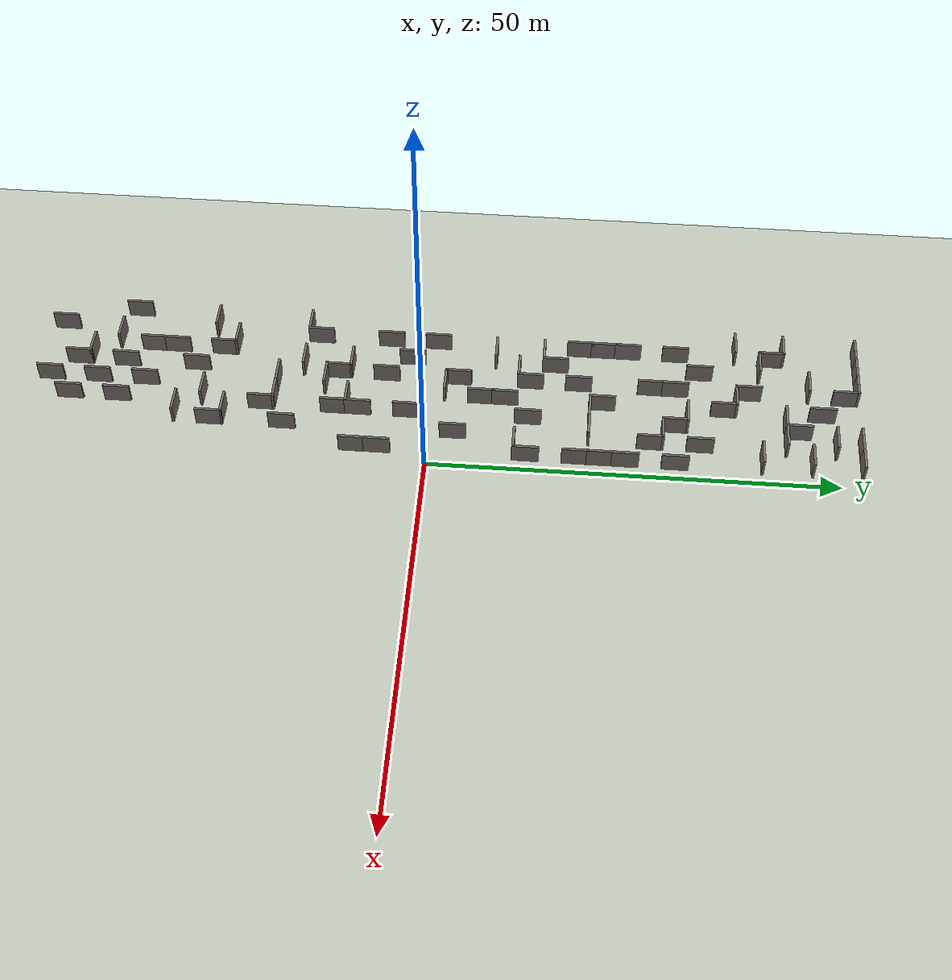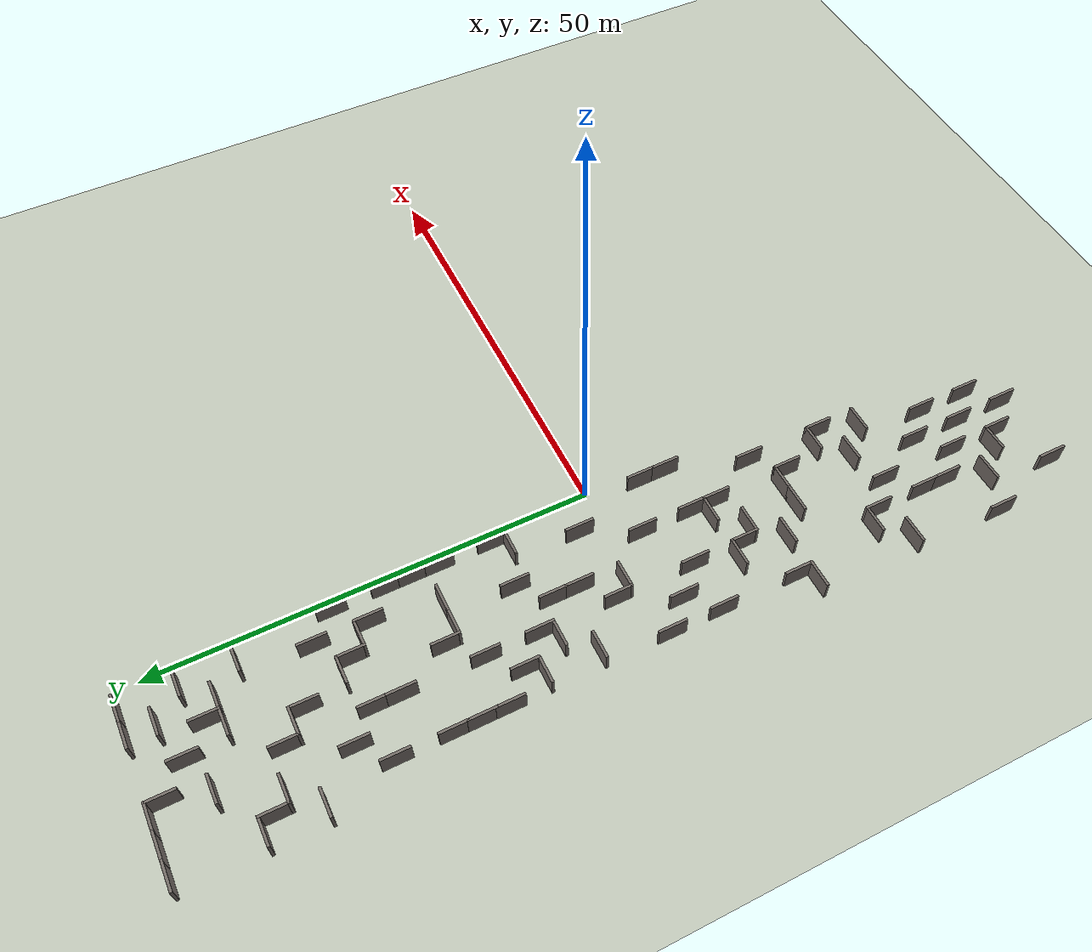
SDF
<sdf version="1.9">
 <world name="swap_world">
  <model name="ground_plane">
   <static>true</static>
   <link name="link">
    <collision name="collision">
     <geometry><plane><normal>0 0 1</normal><size>125 125</size></plane></geometry>
    </collision>
    <visual name="visual">
     <geometry><plane><normal>0 0 1</normal><size>125 125</size></plane></geometry>
     <material><ambient>0.75 0.78 0.72 1</ambient><diffuse>0.75 0.78 0.72 1</diffuse></material>
    </visual>
   </link>
  </model>
  <model name="wall_177">
   <static>true</static>
   <link name="l">
    <pose>-22.50 -39.00 1.25 0 0 1.5708</pose>
    <collision name="c"><geometry><box><size>3.30 0.3 2.5</size></box></geometry></collision>
    <visual name="v">
     <geometry><box><size>3.30 0.3 2.5</size></box></geometry>
     <material><ambient>0.45 0.42 0.4 1</ambient><diffuse>0.45 0.42 0.4 1</diffuse></material>
    </visual>
   </link>
  </model>
  <model name="wall_178">
   <static>true</static>
   <link name="l">
    <pose>-21.00 52.50 1.25 0 0 0.0000</pose>
    <collision name="c"><geometry><box><size>3.30 0.3 2.5</size></box></geometry></collision>
    <visual name="v">
     <geometry><box><size>3.30 0.3 2.5</size></box></geometry>
     <material><ambient>0.45 0.42 0.4 1</ambient><diffuse>0.45 0.42 0.4 1</diffuse></material>
    </visual>
   </link>
  </model>
  <model name="wall_179">
   <static>true</static>
   <link name="l">
    <pose>-19.50 42.00 1.25 0 0 1.5708</pose>
    <collision name="c"><geometry><box><size>3.30 0.3 2.5</size></box></geometry></collision>
    <visual name="v">
     <geometry><box><size>3.30 0.3 2.5</size></box></geometry>
     <material><ambient>0.45 0.42 0.4 1</ambient><diffuse>0.45 0.42 0.4 1</diffuse></material>
    </visual>
   </link>
  </model>
  <model name="wall_180">
   <static>true</static>
   <link name="l">
    <pose>-21.00 43.50 1.25 0 0 0.0000</pose>
    <collision name="c"><geometry><box><size>3.30 0.3 2.5</size></box></geometry></collision>
    <visual name="v">
     <geometry><box><size>3.30 0.3 2.5</size></box></geometry>
     <material><ambient>0.45 0.42 0.4 1</ambient><diffuse>0.45 0.42 0.4 1</diffuse></material>
    </visual>
   </link>
  </model>
  <model name="wall_181">
   <static>true</static>
   <link name="l">
    <pose>-21.00 37.50 1.25 0 0 0.0000</pose>
    <collision name="c"><geometry><box><size>3.30 0.3 2.5</size></box></geometry></collision>
    <visual name="v">
     <geometry><box><size>3.30 0.3 2.5</size></box></geometry>
     <material><ambient>0.45 0.42 0.4 1</ambient><diffuse>0.45 0.42 0.4 1</diffuse></material>
    </visual>
   </link>
  </model>
  <model name="wall_182">
   <static>true</static>
   <link name="l">
    <pose>-19.50 30.00 1.25 0 0 1.5708</pose>
    <collision name="c"><geometry><box><size>3.30 0.3 2.5</size></box></geometry></collision>
    <visual name="v">
     <geometry><box><size>3.30 0.3 2.5</size></box></geometry>
     <material><ambient>0.45 0.42 0.4 1</ambient><diffuse>0.45 0.42 0.4 1</diffuse></material>
    </visual>
   </link>
  </model>
  <model name="wall_183">
   <static>true</static>
   <link name="l">
    <pose>-19.50 24.00 1.25 0 0 1.5708</pose>
    <collision name="c"><geometry><box><size>3.30 0.3 2.5</size></box></geometry></collision>
    <visual name="v">
     <geometry><box><size>3.30 0.3 2.5</size></box></geometry>
     <material><ambient>0.45 0.42 0.4 1</ambient><diffuse>0.45 0.42 0.4 1</diffuse></material>
    </visual>
   </link>
  </model>
  <model name="wall_184">
   <static>true</static>
   <link name="l">
    <pose>-19.50 21.00 1.25 0 0 1.5708</pose>
    <collision name="c"><geometry><box><size>3.30 0.3 2.5</size></box></geometry></collision>
    <visual name="v">
     <geometry><box><size>3.30 0.3 2.5</size></box></geometry>
     <material><ambient>0.45 0.42 0.4 1</ambient><diffuse>0.45 0.42 0.4 1</diffuse></material>
    </visual>
   </link>
  </model>
  <model name="wall_185">
   <static>true</static>
   <link name="l">
    <pose>-19.50 18.00 1.25 0 0 1.5708</pose>
    <collision name="c"><geometry><box><size>3.30 0.3 2.5</size></box></geometry></collision>
    <visual name="v">
     <geometry><box><size>3.30 0.3 2.5</size></box></geometry>
     <material><ambient>0.45 0.42 0.4 1</ambient><diffuse>0.45 0.42 0.4 1</diffuse></material>
    </visual>
   </link>
  </model>
  <model name="wall_186">
   <static>true</static>
   <link name="l">
    <pose>-19.50 -0.00 1.25 0 0 1.5708</pose>
    <collision name="c"><geometry><box><size>3.30 0.3 2.5</size></box></geometry></collision>
    <visual name="v">
     <geometry><box><size>3.30 0.3 2.5</size></box></geometry>
     <material><ambient>0.45 0.42 0.4 1</ambient><diffuse>0.45 0.42 0.4 1</diffuse></material>
    </visual>
   </link>
  </model>
  <model name="wall_187">
   <static>true</static>
   <link name="l">
    <pose>-19.50 -6.00 1.25 0 0 1.5708</pose>
    <collision name="c"><geometry><box><size>3.30 0.3 2.5</size></box></geometry></collision>
    <visual name="v">
     <geometry><box><size>3.30 0.3 2.5</size></box></geometry>
     <material><ambient>0.45 0.42 0.4 1</ambient><diffuse>0.45 0.42 0.4 1</diffuse></material>
    </visual>
   </link>
  </model>
  <model name="wall_188">
   <static>true</static>
   <link name="l">
    <pose>-19.50 -15.00 1.25 0 0 1.5708</pose>
    <collision name="c"><geometry><box><size>3.30 0.3 2.5</size></box></geometry></collision>
    <visual name="v">
     <geometry><box><size>3.30 0.3 2.5</size></box></geometry>
     <material><ambient>0.45 0.42 0.4 1</ambient><diffuse>0.45 0.42 0.4 1</diffuse></material>
    </visual>
   </link>
  </model>
  <model name="wall_189">
   <static>true</static>
   <link name="l">
    <pose>-21.00 -16.50 1.25 0 0 0.0000</pose>
    <collision name="c"><geometry><box><size>3.30 0.3 2.5</size></box></geometry></collision>
    <visual name="v">
     <geometry><box><size>3.30 0.3 2.5</size></box></geometry>
     <material><ambient>0.45 0.42 0.4 1</ambient><diffuse>0.45 0.42 0.4 1</diffuse></material>
    </visual>
   </link>
  </model>
  <model name="wall_190">
   <static>true</static>
   <link name="l">
    <pose>-21.00 -28.50 1.25 0 0 0.0000</pose>
    <collision name="c"><geometry><box><size>3.30 0.3 2.5</size></box></geometry></collision>
    <visual name="v">
     <geometry><box><size>3.30 0.3 2.5</size></box></geometry>
     <material><ambient>0.45 0.42 0.4 1</ambient><diffuse>0.45 0.42 0.4 1</diffuse></material>
    </visual>
   </link>
  </model>
  <model name="wall_191">
   <static>true</static>
   <link name="l">
    <pose>-19.50 -48.00 1.25 0 0 1.5708</pose>
    <collision name="c"><geometry><box><size>3.30 0.3 2.5</size></box></geometry></collision>
    <visual name="v">
     <geometry><box><size>3.30 0.3 2.5</size></box></geometry>
     <material><ambient>0.45 0.42 0.4 1</ambient><diffuse>0.45 0.42 0.4 1</diffuse></material>
    </visual>
   </link>
  </model>
  <model name="wall_192">
   <static>true</static>
   <link name="l">
    <pose>-18.00 52.50 1.25 0 0 0.0000</pose>
    <collision name="c"><geometry><box><size>3.30 0.3 2.5</size></box></geometry></collision>
    <visual name="v">
     <geometry><box><size>3.30 0.3 2.5</size></box></geometry>
     <material><ambient>0.45 0.42 0.4 1</ambient><diffuse>0.45 0.42 0.4 1</diffuse></material>
    </visual>
   </link>
  </model>
  <model name="wall_193">
   <static>true</static>
   <link name="l">
    <pose>-18.00 40.50 1.25 0 0 0.0000</pose>
    <collision name="c"><geometry><box><size>3.30 0.3 2.5</size></box></geometry></collision>
    <visual name="v">
     <geometry><box><size>3.30 0.3 2.5</size></box></geometry>
     <material><ambient>0.45 0.42 0.4 1</ambient><diffuse>0.45 0.42 0.4 1</diffuse></material>
    </visual>
   </link>
  </model>
  <model name="wall_194">
   <static>true</static>
   <link name="l">
    <pose>-16.50 33.00 1.25 0 0 1.5708</pose>
    <collision name="c"><geometry><box><size>3.30 0.3 2.5</size></box></geometry></collision>
    <visual name="v">
     <geometry><box><size>3.30 0.3 2.5</size></box></geometry>
     <material><ambient>0.45 0.42 0.4 1</ambient><diffuse>0.45 0.42 0.4 1</diffuse></material>
    </visual>
   </link>
  </model>
  <model name="wall_195">
   <static>true</static>
   <link name="l">
    <pose>-16.50 15.00 1.25 0 0 1.5708</pose>
    <collision name="c"><geometry><box><size>3.30 0.3 2.5</size></box></geometry></collision>
    <visual name="v">
     <geometry><box><size>3.30 0.3 2.5</size></box></geometry>
     <material><ambient>0.45 0.42 0.4 1</ambient><diffuse>0.45 0.42 0.4 1</diffuse></material>
    </visual>
   </link>
  </model>
  <model name="wall_196">
   <static>true</static>
   <link name="l">
    <pose>-18.00 13.50 1.25 0 0 0.0000</pose>
    <collision name="c"><geometry><box><size>3.30 0.3 2.5</size></box></geometry></collision>
    <visual name="v">
     <geometry><box><size>3.30 0.3 2.5</size></box></geometry>
     <material><ambient>0.45 0.42 0.4 1</ambient><diffuse>0.45 0.42 0.4 1</diffuse></material>
    </visual>
   </link>
  </model>
  <model name="wall_197">
   <static>true</static>
   <link name="l">
    <pose>-18.00 7.50 1.25 0 0 0.0000</pose>
    <collision name="c"><geometry><box><size>3.30 0.3 2.5</size></box></geometry></collision>
    <visual name="v">
     <geometry><box><size>3.30 0.3 2.5</size></box></geometry>
     <material><ambient>0.45 0.42 0.4 1</ambient><diffuse>0.45 0.42 0.4 1</diffuse></material>
    </visual>
   </link>
  </model>
  <model name="wall_198">
   <static>true</static>
   <link name="l">
    <pose>-16.50 -3.00 1.25 0 0 1.5708</pose>
    <collision name="c"><geometry><box><size>3.30 0.3 2.5</size></box></geometry></collision>
    <visual name="v">
     <geometry><box><size>3.30 0.3 2.5</size></box></geometry>
     <material><ambient>0.45 0.42 0.4 1</ambient><diffuse>0.45 0.42 0.4 1</diffuse></material>
    </visual>
   </link>
  </model>
  <model name="wall_199">
   <static>true</static>
   <link name="l">
    <pose>-16.50 -27.00 1.25 0 0 1.5708</pose>
    <collision name="c"><geometry><box><size>3.30 0.3 2.5</size></box></geometry></collision>
    <visual name="v">
     <geometry><box><size>3.30 0.3 2.5</size></box></geometry>
     <material><ambient>0.45 0.42 0.4 1</ambient><diffuse>0.45 0.42 0.4 1</diffuse></material>
    </visual>
   </link>
  </model>
  <model name="wall_200">
   <static>true</static>
   <link name="l">
    <pose>-18.00 -25.50 1.25 0 0 0.0000</pose>
    <collision name="c"><geometry><box><size>3.30 0.3 2.5</size></box></geometry></collision>
    <visual name="v">
     <geometry><box><size>3.30 0.3 2.5</size></box></geometry>
     <material><ambient>0.45 0.42 0.4 1</ambient><diffuse>0.45 0.42 0.4 1</diffuse></material>
    </visual>
   </link>
  </model>
  <model name="wall_201">
   <static>true</static>
   <link name="l">
    <pose>-16.50 -33.00 1.25 0 0 1.5708</pose>
    <collision name="c"><geometry><box><size>3.30 0.3 2.5</size></box></geometry></collision>
    <visual name="v">
     <geometry><box><size>3.30 0.3 2.5</size></box></geometry>
     <material><ambient>0.45 0.42 0.4 1</ambient><diffuse>0.45 0.42 0.4 1</diffuse></material>
    </visual>
   </link>
  </model>
  <model name="wall_202">
   <static>true</static>
   <link name="l">
    <pose>-16.50 -36.00 1.25 0 0 1.5708</pose>
    <collision name="c"><geometry><box><size>3.30 0.3 2.5</size></box></geometry></collision>
    <visual name="v">
     <geometry><box><size>3.30 0.3 2.5</size></box></geometry>
     <material><ambient>0.45 0.42 0.4 1</ambient><diffuse>0.45 0.42 0.4 1</diffuse></material>
    </visual>
   </link>
  </model>
  <model name="wall_203">
   <static>true</static>
   <link name="l">
    <pose>-18.00 -40.50 1.25 0 0 0.0000</pose>
    <collision name="c"><geometry><box><size>3.30 0.3 2.5</size></box></geometry></collision>
    <visual name="v">
     <geometry><box><size>3.30 0.3 2.5</size></box></geometry>
     <material><ambient>0.45 0.42 0.4 1</ambient><diffuse>0.45 0.42 0.4 1</diffuse></material>
    </visual>
   </link>
  </model>
  <model name="wall_204">
   <static>true</static>
   <link name="l">
    <pose>-13.50 51.00 1.25 0 0 1.5708</pose>
    <collision name="c"><geometry><box><size>3.30 0.3 2.5</size></box></geometry></collision>
    <visual name="v">
     <geometry><box><size>3.30 0.3 2.5</size></box></geometry>
     <material><ambient>0.45 0.42 0.4 1</ambient><diffuse>0.45 0.42 0.4 1</diffuse></material>
    </visual>
   </link>
  </model>
  <model name="wall_205">
   <static>true</static>
   <link name="l">
    <pose>-15.00 52.50 1.25 0 0 0.0000</pose>
    <collision name="c"><geometry><box><size>3.30 0.3 2.5</size></box></geometry></collision>
    <visual name="v">
     <geometry><box><size>3.30 0.3 2.5</size></box></geometry>
     <material><ambient>0.45 0.42 0.4 1</ambient><diffuse>0.45 0.42 0.4 1</diffuse></material>
    </visual>
   </link>
  </model>
  <model name="wall_206">
   <static>true</static>
   <link name="l">
    <pose>-15.00 46.50 1.25 0 0 0.0000</pose>
    <collision name="c"><geometry><box><size>3.30 0.3 2.5</size></box></geometry></collision>
    <visual name="v">
     <geometry><box><size>3.30 0.3 2.5</size></box></geometry>
     <material><ambient>0.45 0.42 0.4 1</ambient><diffuse>0.45 0.42 0.4 1</diffuse></material>
    </visual>
   </link>
  </model>
  <model name="wall_207">
   <static>true</static>
   <link name="l">
    <pose>-13.50 39.00 1.25 0 0 1.5708</pose>
    <collision name="c"><geometry><box><size>3.30 0.3 2.5</size></box></geometry></collision>
    <visual name="v">
     <geometry><box><size>3.30 0.3 2.5</size></box></geometry>
     <material><ambient>0.45 0.42 0.4 1</ambient><diffuse>0.45 0.42 0.4 1</diffuse></material>
    </visual>
   </link>
  </model>
  <model name="wall_208">
   <static>true</static>
   <link name="l">
    <pose>-13.50 30.00 1.25 0 0 1.5708</pose>
    <collision name="c"><geometry><box><size>3.30 0.3 2.5</size></box></geometry></collision>
    <visual name="v">
     <geometry><box><size>3.30 0.3 2.5</size></box></geometry>
     <material><ambient>0.45 0.42 0.4 1</ambient><diffuse>0.45 0.42 0.4 1</diffuse></material>
    </visual>
   </link>
  </model>
  <model name="wall_209">
   <static>true</static>
   <link name="l">
    <pose>-13.50 27.00 1.25 0 0 1.5708</pose>
    <collision name="c"><geometry><box><size>3.30 0.3 2.5</size></box></geometry></collision>
    <visual name="v">
     <geometry><box><size>3.30 0.3 2.5</size></box></geometry>
     <material><ambient>0.45 0.42 0.4 1</ambient><diffuse>0.45 0.42 0.4 1</diffuse></material>
    </visual>
   </link>
  </model>
  <model name="wall_210">
   <static>true</static>
   <link name="l">
    <pose>-13.50 18.00 1.25 0 0 1.5708</pose>
    <collision name="c"><geometry><box><size>3.30 0.3 2.5</size></box></geometry></collision>
    <visual name="v">
     <geometry><box><size>3.30 0.3 2.5</size></box></geometry>
     <material><ambient>0.45 0.42 0.4 1</ambient><diffuse>0.45 0.42 0.4 1</diffuse></material>
    </visual>
   </link>
  </model>
  <model name="wall_211">
   <static>true</static>
   <link name="l">
    <pose>-13.50 12.00 1.25 0 0 1.5708</pose>
    <collision name="c"><geometry><box><size>3.30 0.3 2.5</size></box></geometry></collision>
    <visual name="v">
     <geometry><box><size>3.30 0.3 2.5</size></box></geometry>
     <material><ambient>0.45 0.42 0.4 1</ambient><diffuse>0.45 0.42 0.4 1</diffuse></material>
    </visual>
   </link>
  </model>
  <model name="wall_212">
   <static>true</static>
   <link name="l">
    <pose>-15.00 10.50 1.25 0 0 0.0000</pose>
    <collision name="c"><geometry><box><size>3.30 0.3 2.5</size></box></geometry></collision>
    <visual name="v">
     <geometry><box><size>3.30 0.3 2.5</size></box></geometry>
     <material><ambient>0.45 0.42 0.4 1</ambient><diffuse>0.45 0.42 0.4 1</diffuse></material>
    </visual>
   </link>
  </model>
  <model name="wall_213">
   <static>true</static>
   <link name="l">
    <pose>-13.50 3.00 1.25 0 0 1.5708</pose>
    <collision name="c"><geometry><box><size>3.30 0.3 2.5</size></box></geometry></collision>
    <visual name="v">
     <geometry><box><size>3.30 0.3 2.5</size></box></geometry>
     <material><ambient>0.45 0.42 0.4 1</ambient><diffuse>0.45 0.42 0.4 1</diffuse></material>
    </visual>
   </link>
  </model>
  <model name="wall_214">
   <static>true</static>
   <link name="l">
    <pose>-13.50 -6.00 1.25 0 0 1.5708</pose>
    <collision name="c"><geometry><box><size>3.30 0.3 2.5</size></box></geometry></collision>
    <visual name="v">
     <geometry><box><size>3.30 0.3 2.5</size></box></geometry>
     <material><ambient>0.45 0.42 0.4 1</ambient><diffuse>0.45 0.42 0.4 1</diffuse></material>
    </visual>
   </link>
  </model>
  <model name="wall_215">
   <static>true</static>
   <link name="l">
    <pose>-13.50 -12.00 1.25 0 0 1.5708</pose>
    <collision name="c"><geometry><box><size>3.30 0.3 2.5</size></box></geometry></collision>
    <visual name="v">
     <geometry><box><size>3.30 0.3 2.5</size></box></geometry>
     <material><ambient>0.45 0.42 0.4 1</ambient><diffuse>0.45 0.42 0.4 1</diffuse></material>
    </visual>
   </link>
  </model>
  <model name="wall_216">
   <static>true</static>
   <link name="l">
    <pose>-15.00 -10.50 1.25 0 0 0.0000</pose>
    <collision name="c"><geometry><box><size>3.30 0.3 2.5</size></box></geometry></collision>
    <visual name="v">
     <geometry><box><size>3.30 0.3 2.5</size></box></geometry>
     <material><ambient>0.45 0.42 0.4 1</ambient><diffuse>0.45 0.42 0.4 1</diffuse></material>
    </visual>
   </link>
  </model>
  <model name="wall_217">
   <static>true</static>
   <link name="l">
    <pose>-15.00 -16.50 1.25 0 0 0.0000</pose>
    <collision name="c"><geometry><box><size>3.30 0.3 2.5</size></box></geometry></collision>
    <visual name="v">
     <geometry><box><size>3.30 0.3 2.5</size></box></geometry>
     <material><ambient>0.45 0.42 0.4 1</ambient><diffuse>0.45 0.42 0.4 1</diffuse></material>
    </visual>
   </link>
  </model>
  <model name="wall_218">
   <static>true</static>
   <link name="l">
    <pose>-13.50 -30.00 1.25 0 0 1.5708</pose>
    <collision name="c"><geometry><box><size>3.30 0.3 2.5</size></box></geometry></collision>
    <visual name="v">
     <geometry><box><size>3.30 0.3 2.5</size></box></geometry>
     <material><ambient>0.45 0.42 0.4 1</ambient><diffuse>0.45 0.42 0.4 1</diffuse></material>
    </visual>
   </link>
  </model>
  <model name="wall_219">
   <static>true</static>
   <link name="l">
    <pose>-13.50 -39.00 1.25 0 0 1.5708</pose>
    <collision name="c"><geometry><box><size>3.30 0.3 2.5</size></box></geometry></collision>
    <visual name="v">
     <geometry><box><size>3.30 0.3 2.5</size></box></geometry>
     <material><ambient>0.45 0.42 0.4 1</ambient><diffuse>0.45 0.42 0.4 1</diffuse></material>
    </visual>
   </link>
  </model>
  <model name="wall_220">
   <static>true</static>
   <link name="l">
    <pose>-13.50 -45.00 1.25 0 0 1.5708</pose>
    <collision name="c"><geometry><box><size>3.30 0.3 2.5</size></box></geometry></collision>
    <visual name="v">
     <geometry><box><size>3.30 0.3 2.5</size></box></geometry>
     <material><ambient>0.45 0.42 0.4 1</ambient><diffuse>0.45 0.42 0.4 1</diffuse></material>
    </visual>
   </link>
  </model>
  <model name="wall_221">
   <static>true</static>
   <link name="l">
    <pose>-15.00 -43.50 1.25 0 0 0.0000</pose>
    <collision name="c"><geometry><box><size>3.30 0.3 2.5</size></box></geometry></collision>
    <visual name="v">
     <geometry><box><size>3.30 0.3 2.5</size></box></geometry>
     <material><ambient>0.45 0.42 0.4 1</ambient><diffuse>0.45 0.42 0.4 1</diffuse></material>
    </visual>
   </link>
  </model>
  <model name="wall_222">
   <static>true</static>
   <link name="l">
    <pose>-10.50 48.00 1.25 0 0 1.5708</pose>
    <collision name="c"><geometry><box><size>3.30 0.3 2.5</size></box></geometry></collision>
    <visual name="v">
     <geometry><box><size>3.30 0.3 2.5</size></box></geometry>
     <material><ambient>0.45 0.42 0.4 1</ambient><diffuse>0.45 0.42 0.4 1</diffuse></material>
    </visual>
   </link>
  </model>
  <model name="wall_223">
   <static>true</static>
   <link name="l">
    <pose>-10.50 36.00 1.25 0 0 1.5708</pose>
    <collision name="c"><geometry><box><size>3.30 0.3 2.5</size></box></geometry></collision>
    <visual name="v">
     <geometry><box><size>3.30 0.3 2.5</size></box></geometry>
     <material><ambient>0.45 0.42 0.4 1</ambient><diffuse>0.45 0.42 0.4 1</diffuse></material>
    </visual>
   </link>
  </model>
  <model name="wall_224">
   <static>true</static>
   <link name="l">
    <pose>-12.00 37.50 1.25 0 0 0.0000</pose>
    <collision name="c"><geometry><box><size>3.30 0.3 2.5</size></box></geometry></collision>
    <visual name="v">
     <geometry><box><size>3.30 0.3 2.5</size></box></geometry>
     <material><ambient>0.45 0.42 0.4 1</ambient><diffuse>0.45 0.42 0.4 1</diffuse></material>
    </visual>
   </link>
  </model>
  <model name="wall_225">
   <static>true</static>
   <link name="l">
    <pose>-10.50 21.00 1.25 0 0 1.5708</pose>
    <collision name="c"><geometry><box><size>3.30 0.3 2.5</size></box></geometry></collision>
    <visual name="v">
     <geometry><box><size>3.30 0.3 2.5</size></box></geometry>
     <material><ambient>0.45 0.42 0.4 1</ambient><diffuse>0.45 0.42 0.4 1</diffuse></material>
    </visual>
   </link>
  </model>
  <model name="wall_226">
   <static>true</static>
   <link name="l">
    <pose>-10.50 9.00 1.25 0 0 1.5708</pose>
    <collision name="c"><geometry><box><size>3.30 0.3 2.5</size></box></geometry></collision>
    <visual name="v">
     <geometry><box><size>3.30 0.3 2.5</size></box></geometry>
     <material><ambient>0.45 0.42 0.4 1</ambient><diffuse>0.45 0.42 0.4 1</diffuse></material>
    </visual>
   </link>
  </model>
  <model name="wall_227">
   <static>true</static>
   <link name="l">
    <pose>-10.50 6.00 1.25 0 0 1.5708</pose>
    <collision name="c"><geometry><box><size>3.30 0.3 2.5</size></box></geometry></collision>
    <visual name="v">
     <geometry><box><size>3.30 0.3 2.5</size></box></geometry>
     <material><ambient>0.45 0.42 0.4 1</ambient><diffuse>0.45 0.42 0.4 1</diffuse></material>
    </visual>
   </link>
  </model>
  <model name="wall_228">
   <static>true</static>
   <link name="l">
    <pose>-12.00 1.50 1.25 0 0 0.0000</pose>
    <collision name="c"><geometry><box><size>3.30 0.3 2.5</size></box></geometry></collision>
    <visual name="v">
     <geometry><box><size>3.30 0.3 2.5</size></box></geometry>
     <material><ambient>0.45 0.42 0.4 1</ambient><diffuse>0.45 0.42 0.4 1</diffuse></material>
    </visual>
   </link>
  </model>
  <model name="wall_229">
   <static>true</static>
   <link name="l">
    <pose>-12.00 -13.50 1.25 0 0 0.0000</pose>
    <collision name="c"><geometry><box><size>3.30 0.3 2.5</size></box></geometry></collision>
    <visual name="v">
     <geometry><box><size>3.30 0.3 2.5</size></box></geometry>
     <material><ambient>0.45 0.42 0.4 1</ambient><diffuse>0.45 0.42 0.4 1</diffuse></material>
    </visual>
   </link>
  </model>
  <model name="wall_230">
   <static>true</static>
   <link name="l">
    <pose>-12.00 -19.50 1.25 0 0 0.0000</pose>
    <collision name="c"><geometry><box><size>3.30 0.3 2.5</size></box></geometry></collision>
    <visual name="v">
     <geometry><box><size>3.30 0.3 2.5</size></box></geometry>
     <material><ambient>0.45 0.42 0.4 1</ambient><diffuse>0.45 0.42 0.4 1</diffuse></material>
    </visual>
   </link>
  </model>
  <model name="wall_231">
   <static>true</static>
   <link name="l">
    <pose>-10.50 -36.00 1.25 0 0 1.5708</pose>
    <collision name="c"><geometry><box><size>3.30 0.3 2.5</size></box></geometry></collision>
    <visual name="v">
     <geometry><box><size>3.30 0.3 2.5</size></box></geometry>
     <material><ambient>0.45 0.42 0.4 1</ambient><diffuse>0.45 0.42 0.4 1</diffuse></material>
    </visual>
   </link>
  </model>
  <model name="wall_232">
   <static>true</static>
   <link name="l">
    <pose>-10.50 -42.00 1.25 0 0 1.5708</pose>
    <collision name="c"><geometry><box><size>3.30 0.3 2.5</size></box></geometry></collision>
    <visual name="v">
     <geometry><box><size>3.30 0.3 2.5</size></box></geometry>
     <material><ambient>0.45 0.42 0.4 1</ambient><diffuse>0.45 0.42 0.4 1</diffuse></material>
    </visual>
   </link>
  </model>
  <model name="wall_233">
   <static>true</static>
   <link name="l">
    <pose>-10.50 -48.00 1.25 0 0 1.5708</pose>
    <collision name="c"><geometry><box><size>3.30 0.3 2.5</size></box></geometry></collision>
    <visual name="v">
     <geometry><box><size>3.30 0.3 2.5</size></box></geometry>
     <material><ambient>0.45 0.42 0.4 1</ambient><diffuse>0.45 0.42 0.4 1</diffuse></material>
    </visual>
   </link>
  </model>
  <model name="wall_234">
   <static>true</static>
   <link name="l">
    <pose>-7.50 45.00 1.25 0 0 1.5708</pose>
    <collision name="c"><geometry><box><size>3.30 0.3 2.5</size></box></geometry></collision>
    <visual name="v">
     <geometry><box><size>3.30 0.3 2.5</size></box></geometry>
     <material><ambient>0.45 0.42 0.4 1</ambient><diffuse>0.45 0.42 0.4 1</diffuse></material>
    </visual>
   </link>
  </model>
  <model name="wall_235">
   <static>true</static>
   <link name="l">
    <pose>-9.00 43.50 1.25 0 0 0.0000</pose>
    <collision name="c"><geometry><box><size>3.30 0.3 2.5</size></box></geometry></collision>
    <visual name="v">
     <geometry><box><size>3.30 0.3 2.5</size></box></geometry>
     <material><ambient>0.45 0.42 0.4 1</ambient><diffuse>0.45 0.42 0.4 1</diffuse></material>
    </visual>
   </link>
  </model>
  <model name="wall_236">
   <static>true</static>
   <link name="l">
    <pose>-7.50 30.00 1.25 0 0 1.5708</pose>
    <collision name="c"><geometry><box><size>3.30 0.3 2.5</size></box></geometry></collision>
    <visual name="v">
     <geometry><box><size>3.30 0.3 2.5</size></box></geometry>
     <material><ambient>0.45 0.42 0.4 1</ambient><diffuse>0.45 0.42 0.4 1</diffuse></material>
    </visual>
   </link>
  </model>
  <model name="wall_237">
   <static>true</static>
   <link name="l">
    <pose>-9.00 31.50 1.25 0 0 0.0000</pose>
    <collision name="c"><geometry><box><size>3.30 0.3 2.5</size></box></geometry></collision>
    <visual name="v">
     <geometry><box><size>3.30 0.3 2.5</size></box></geometry>
     <material><ambient>0.45 0.42 0.4 1</ambient><diffuse>0.45 0.42 0.4 1</diffuse></material>
    </visual>
   </link>
  </model>
  <model name="wall_238">
   <static>true</static>
   <link name="l">
    <pose>-9.00 19.50 1.25 0 0 0.0000</pose>
    <collision name="c"><geometry><box><size>3.30 0.3 2.5</size></box></geometry></collision>
    <visual name="v">
     <geometry><box><size>3.30 0.3 2.5</size></box></geometry>
     <material><ambient>0.45 0.42 0.4 1</ambient><diffuse>0.45 0.42 0.4 1</diffuse></material>
    </visual>
   </link>
  </model>
  <model name="wall_239">
   <static>true</static>
   <link name="l">
    <pose>-7.50 12.00 1.25 0 0 1.5708</pose>
    <collision name="c"><geometry><box><size>3.30 0.3 2.5</size></box></geometry></collision>
    <visual name="v">
     <geometry><box><size>3.30 0.3 2.5</size></box></geometry>
     <material><ambient>0.45 0.42 0.4 1</ambient><diffuse>0.45 0.42 0.4 1</diffuse></material>
    </visual>
   </link>
  </model>
  <model name="wall_240">
   <static>true</static>
   <link name="l">
    <pose>-7.50 -3.00 1.25 0 0 1.5708</pose>
    <collision name="c"><geometry><box><size>3.30 0.3 2.5</size></box></geometry></collision>
    <visual name="v">
     <geometry><box><size>3.30 0.3 2.5</size></box></geometry>
     <material><ambient>0.45 0.42 0.4 1</ambient><diffuse>0.45 0.42 0.4 1</diffuse></material>
    </visual>
   </link>
  </model>
  <model name="wall_241">
   <static>true</static>
   <link name="l">
    <pose>-7.50 -9.00 1.25 0 0 1.5708</pose>
    <collision name="c"><geometry><box><size>3.30 0.3 2.5</size></box></geometry></collision>
    <visual name="v">
     <geometry><box><size>3.30 0.3 2.5</size></box></geometry>
     <material><ambient>0.45 0.42 0.4 1</ambient><diffuse>0.45 0.42 0.4 1</diffuse></material>
    </visual>
   </link>
  </model>
  <model name="wall_242">
   <static>true</static>
   <link name="l">
    <pose>-7.50 -12.00 1.25 0 0 1.5708</pose>
    <collision name="c"><geometry><box><size>3.30 0.3 2.5</size></box></geometry></collision>
    <visual name="v">
     <geometry><box><size>3.30 0.3 2.5</size></box></geometry>
     <material><ambient>0.45 0.42 0.4 1</ambient><diffuse>0.45 0.42 0.4 1</diffuse></material>
    </visual>
   </link>
  </model>
  <model name="wall_243">
   <static>true</static>
   <link name="l">
    <pose>-9.00 -10.50 1.25 0 0 0.0000</pose>
    <collision name="c"><geometry><box><size>3.30 0.3 2.5</size></box></geometry></collision>
    <visual name="v">
     <geometry><box><size>3.30 0.3 2.5</size></box></geometry>
     <material><ambient>0.45 0.42 0.4 1</ambient><diffuse>0.45 0.42 0.4 1</diffuse></material>
    </visual>
   </link>
  </model>
  <model name="wall_244">
   <static>true</static>
   <link name="l">
    <pose>-7.50 -21.00 1.25 0 0 1.5708</pose>
    <collision name="c"><geometry><box><size>3.30 0.3 2.5</size></box></geometry></collision>
    <visual name="v">
     <geometry><box><size>3.30 0.3 2.5</size></box></geometry>
     <material><ambient>0.45 0.42 0.4 1</ambient><diffuse>0.45 0.42 0.4 1</diffuse></material>
    </visual>
   </link>
  </model>
  <model name="wall_245">
   <static>true</static>
   <link name="l">
    <pose>-9.00 -19.50 1.25 0 0 0.0000</pose>
    <collision name="c"><geometry><box><size>3.30 0.3 2.5</size></box></geometry></collision>
    <visual name="v">
     <geometry><box><size>3.30 0.3 2.5</size></box></geometry>
     <material><ambient>0.45 0.42 0.4 1</ambient><diffuse>0.45 0.42 0.4 1</diffuse></material>
    </visual>
   </link>
  </model>
  <model name="wall_246">
   <static>true</static>
   <link name="l">
    <pose>-9.00 -28.50 1.25 0 0 0.0000</pose>
    <collision name="c"><geometry><box><size>3.30 0.3 2.5</size></box></geometry></collision>
    <visual name="v">
     <geometry><box><size>3.30 0.3 2.5</size></box></geometry>
     <material><ambient>0.45 0.42 0.4 1</ambient><diffuse>0.45 0.42 0.4 1</diffuse></material>
    </visual>
   </link>
  </model>
  <model name="wall_247">
   <static>true</static>
   <link name="l">
    <pose>-7.50 -39.00 1.25 0 0 1.5708</pose>
    <collision name="c"><geometry><box><size>3.30 0.3 2.5</size></box></geometry></collision>
    <visual name="v">
     <geometry><box><size>3.30 0.3 2.5</size></box></geometry>
     <material><ambient>0.45 0.42 0.4 1</ambient><diffuse>0.45 0.42 0.4 1</diffuse></material>
    </visual>
   </link>
  </model>
  <model name="wall_248">
   <static>true</static>
   <link name="l">
    <pose>-7.50 -45.00 1.25 0 0 1.5708</pose>
    <collision name="c"><geometry><box><size>3.30 0.3 2.5</size></box></geometry></collision>
    <visual name="v">
     <geometry><box><size>3.30 0.3 2.5</size></box></geometry>
     <material><ambient>0.45 0.42 0.4 1</ambient><diffuse>0.45 0.42 0.4 1</diffuse></material>
    </visual>
   </link>
  </model>
  <model name="wall_249">
   <static>true</static>
   <link name="l">
    <pose>-6.00 52.50 1.25 0 0 0.0000</pose>
    <collision name="c"><geometry><box><size>3.30 0.3 2.5</size></box></geometry></collision>
    <visual name="v">
     <geometry><box><size>3.30 0.3 2.5</size></box></geometry>
     <material><ambient>0.45 0.42 0.4 1</ambient><diffuse>0.45 0.42 0.4 1</diffuse></material>
    </visual>
   </link>
  </model>
  <model name="wall_250">
   <static>true</static>
   <link name="l">
    <pose>-6.00 49.50 1.25 0 0 0.0000</pose>
    <collision name="c"><geometry><box><size>3.30 0.3 2.5</size></box></geometry></collision>
    <visual name="v">
     <geometry><box><size>3.30 0.3 2.5</size></box></geometry>
     <material><ambient>0.45 0.42 0.4 1</ambient><diffuse>0.45 0.42 0.4 1</diffuse></material>
    </visual>
   </link>
  </model>
  <model name="wall_251">
   <static>true</static>
   <link name="l">
    <pose>-6.00 43.50 1.25 0 0 0.0000</pose>
    <collision name="c"><geometry><box><size>3.30 0.3 2.5</size></box></geometry></collision>
    <visual name="v">
     <geometry><box><size>3.30 0.3 2.5</size></box></geometry>
     <material><ambient>0.45 0.42 0.4 1</ambient><diffuse>0.45 0.42 0.4 1</diffuse></material>
    </visual>
   </link>
  </model>
  <model name="wall_252">
   <static>true</static>
   <link name="l">
    <pose>-4.50 33.00 1.25 0 0 1.5708</pose>
    <collision name="c"><geometry><box><size>3.30 0.3 2.5</size></box></geometry></collision>
    <visual name="v">
     <geometry><box><size>3.30 0.3 2.5</size></box></geometry>
     <material><ambient>0.45 0.42 0.4 1</ambient><diffuse>0.45 0.42 0.4 1</diffuse></material>
    </visual>
   </link>
  </model>
  <model name="wall_253">
   <static>true</static>
   <link name="l">
    <pose>-4.50 27.00 1.25 0 0 1.5708</pose>
    <collision name="c"><geometry><box><size>3.30 0.3 2.5</size></box></geometry></collision>
    <visual name="v">
     <geometry><box><size>3.30 0.3 2.5</size></box></geometry>
     <material><ambient>0.45 0.42 0.4 1</ambient><diffuse>0.45 0.42 0.4 1</diffuse></material>
    </visual>
   </link>
  </model>
  <model name="wall_254">
   <static>true</static>
   <link name="l">
    <pose>-6.00 28.50 1.25 0 0 0.0000</pose>
    <collision name="c"><geometry><box><size>3.30 0.3 2.5</size></box></geometry></collision>
    <visual name="v">
     <geometry><box><size>3.30 0.3 2.5</size></box></geometry>
     <material><ambient>0.45 0.42 0.4 1</ambient><diffuse>0.45 0.42 0.4 1</diffuse></material>
    </visual>
   </link>
  </model>
  <model name="wall_255">
   <static>true</static>
   <link name="l">
    <pose>-6.00 19.50 1.25 0 0 0.0000</pose>
    <collision name="c"><geometry><box><size>3.30 0.3 2.5</size></box></geometry></collision>
    <visual name="v">
     <geometry><box><size>3.30 0.3 2.5</size></box></geometry>
     <material><ambient>0.45 0.42 0.4 1</ambient><diffuse>0.45 0.42 0.4 1</diffuse></material>
    </visual>
   </link>
  </model>
  <model name="wall_256">
   <static>true</static>
   <link name="l">
    <pose>-4.50 3.00 1.25 0 0 1.5708</pose>
    <collision name="c"><geometry><box><size>3.30 0.3 2.5</size></box></geometry></collision>
    <visual name="v">
     <geometry><box><size>3.30 0.3 2.5</size></box></geometry>
     <material><ambient>0.45 0.42 0.4 1</ambient><diffuse>0.45 0.42 0.4 1</diffuse></material>
    </visual>
   </link>
  </model>
  <model name="wall_257">
   <static>true</static>
   <link name="l">
    <pose>-4.50 -18.00 1.25 0 0 1.5708</pose>
    <collision name="c"><geometry><box><size>3.30 0.3 2.5</size></box></geometry></collision>
    <visual name="v">
     <geometry><box><size>3.30 0.3 2.5</size></box></geometry>
     <material><ambient>0.45 0.42 0.4 1</ambient><diffuse>0.45 0.42 0.4 1</diffuse></material>
    </visual>
   </link>
  </model>
  <model name="wall_258">
   <static>true</static>
   <link name="l">
    <pose>-4.50 -27.00 1.25 0 0 1.5708</pose>
    <collision name="c"><geometry><box><size>3.30 0.3 2.5</size></box></geometry></collision>
    <visual name="v">
     <geometry><box><size>3.30 0.3 2.5</size></box></geometry>
     <material><ambient>0.45 0.42 0.4 1</ambient><diffuse>0.45 0.42 0.4 1</diffuse></material>
    </visual>
   </link>
  </model>
  <model name="wall_259">
   <static>true</static>
   <link name="l">
    <pose>-6.00 -25.50 1.25 0 0 0.0000</pose>
    <collision name="c"><geometry><box><size>3.30 0.3 2.5</size></box></geometry></collision>
    <visual name="v">
     <geometry><box><size>3.30 0.3 2.5</size></box></geometry>
     <material><ambient>0.45 0.42 0.4 1</ambient><diffuse>0.45 0.42 0.4 1</diffuse></material>
    </visual>
   </link>
  </model>
  <model name="wall_260">
   <static>true</static>
   <link name="l">
    <pose>-6.00 -31.50 1.25 0 0 0.0000</pose>
    <collision name="c"><geometry><box><size>3.30 0.3 2.5</size></box></geometry></collision>
    <visual name="v">
     <geometry><box><size>3.30 0.3 2.5</size></box></geometry>
     <material><ambient>0.45 0.42 0.4 1</ambient><diffuse>0.45 0.42 0.4 1</diffuse></material>
    </visual>
   </link>
  </model>
  <model name="wall_261">
   <static>true</static>
   <link name="l">
    <pose>-3.00 52.50 1.25 0 0 0.0000</pose>
    <collision name="c"><geometry><box><size>3.30 0.3 2.5</size></box></geometry></collision>
    <visual name="v">
     <geometry><box><size>3.30 0.3 2.5</size></box></geometry>
     <material><ambient>0.45 0.42 0.4 1</ambient><diffuse>0.45 0.42 0.4 1</diffuse></material>
    </visual>
   </link>
  </model>
  <model name="wall_262">
   <static>true</static>
   <link name="l">
    <pose>-3.00 46.50 1.25 0 0 0.0000</pose>
    <collision name="c"><geometry><box><size>3.30 0.3 2.5</size></box></geometry></collision>
    <visual name="v">
     <geometry><box><size>3.30 0.3 2.5</size></box></geometry>
     <material><ambient>0.45 0.42 0.4 1</ambient><diffuse>0.45 0.42 0.4 1</diffuse></material>
    </visual>
   </link>
  </model>
  <model name="wall_263">
   <static>true</static>
   <link name="l">
    <pose>-3.00 40.50 1.25 0 0 0.0000</pose>
    <collision name="c"><geometry><box><size>3.30 0.3 2.5</size></box></geometry></collision>
    <visual name="v">
     <geometry><box><size>3.30 0.3 2.5</size></box></geometry>
     <material><ambient>0.45 0.42 0.4 1</ambient><diffuse>0.45 0.42 0.4 1</diffuse></material>
    </visual>
   </link>
  </model>
  <model name="wall_264">
   <static>true</static>
   <link name="l">
    <pose>-1.50 30.00 1.25 0 0 1.5708</pose>
    <collision name="c"><geometry><box><size>3.30 0.3 2.5</size></box></geometry></collision>
    <visual name="v">
     <geometry><box><size>3.30 0.3 2.5</size></box></geometry>
     <material><ambient>0.45 0.42 0.4 1</ambient><diffuse>0.45 0.42 0.4 1</diffuse></material>
    </visual>
   </link>
  </model>
  <model name="wall_265">
   <static>true</static>
   <link name="l">
    <pose>-1.50 24.00 1.25 0 0 1.5708</pose>
    <collision name="c"><geometry><box><size>3.30 0.3 2.5</size></box></geometry></collision>
    <visual name="v">
     <geometry><box><size>3.30 0.3 2.5</size></box></geometry>
     <material><ambient>0.45 0.42 0.4 1</ambient><diffuse>0.45 0.42 0.4 1</diffuse></material>
    </visual>
   </link>
  </model>
  <model name="wall_266">
   <static>true</static>
   <link name="l">
    <pose>-1.50 21.00 1.25 0 0 1.5708</pose>
    <collision name="c"><geometry><box><size>3.30 0.3 2.5</size></box></geometry></collision>
    <visual name="v">
     <geometry><box><size>3.30 0.3 2.5</size></box></geometry>
     <material><ambient>0.45 0.42 0.4 1</ambient><diffuse>0.45 0.42 0.4 1</diffuse></material>
    </visual>
   </link>
  </model>
  <model name="wall_267">
   <static>true</static>
   <link name="l">
    <pose>-1.50 18.00 1.25 0 0 1.5708</pose>
    <collision name="c"><geometry><box><size>3.30 0.3 2.5</size></box></geometry></collision>
    <visual name="v">
     <geometry><box><size>3.30 0.3 2.5</size></box></geometry>
     <material><ambient>0.45 0.42 0.4 1</ambient><diffuse>0.45 0.42 0.4 1</diffuse></material>
    </visual>
   </link>
  </model>
  <model name="wall_268">
   <static>true</static>
   <link name="l">
    <pose>-1.50 12.00 1.25 0 0 1.5708</pose>
    <collision name="c"><geometry><box><size>3.30 0.3 2.5</size></box></geometry></collision>
    <visual name="v">
     <geometry><box><size>3.30 0.3 2.5</size></box></geometry>
     <material><ambient>0.45 0.42 0.4 1</ambient><diffuse>0.45 0.42 0.4 1</diffuse></material>
    </visual>
   </link>
  </model>
  <model name="wall_269">
   <static>true</static>
   <link name="l">
    <pose>-3.00 10.50 1.25 0 0 0.0000</pose>
    <collision name="c"><geometry><box><size>3.30 0.3 2.5</size></box></geometry></collision>
    <visual name="v">
     <geometry><box><size>3.30 0.3 2.5</size></box></geometry>
     <material><ambient>0.45 0.42 0.4 1</ambient><diffuse>0.45 0.42 0.4 1</diffuse></material>
    </visual>
   </link>
  </model>
  <model name="wall_270">
   <static>true</static>
   <link name="l">
    <pose>-1.50 -6.00 1.25 0 0 1.5708</pose>
    <collision name="c"><geometry><box><size>3.30 0.3 2.5</size></box></geometry></collision>
    <visual name="v">
     <geometry><box><size>3.30 0.3 2.5</size></box></geometry>
     <material><ambient>0.45 0.42 0.4 1</ambient><diffuse>0.45 0.42 0.4 1</diffuse></material>
    </visual>
   </link>
  </model>
  <model name="wall_271">
   <static>true</static>
   <link name="l">
    <pose>-1.50 -9.00 1.25 0 0 1.5708</pose>
    <collision name="c"><geometry><box><size>3.30 0.3 2.5</size></box></geometry></collision>
    <visual name="v">
     <geometry><box><size>3.30 0.3 2.5</size></box></geometry>
     <material><ambient>0.45 0.42 0.4 1</ambient><diffuse>0.45 0.42 0.4 1</diffuse></material>
    </visual>
   </link>
  </model>
 </world>
</sdf>
